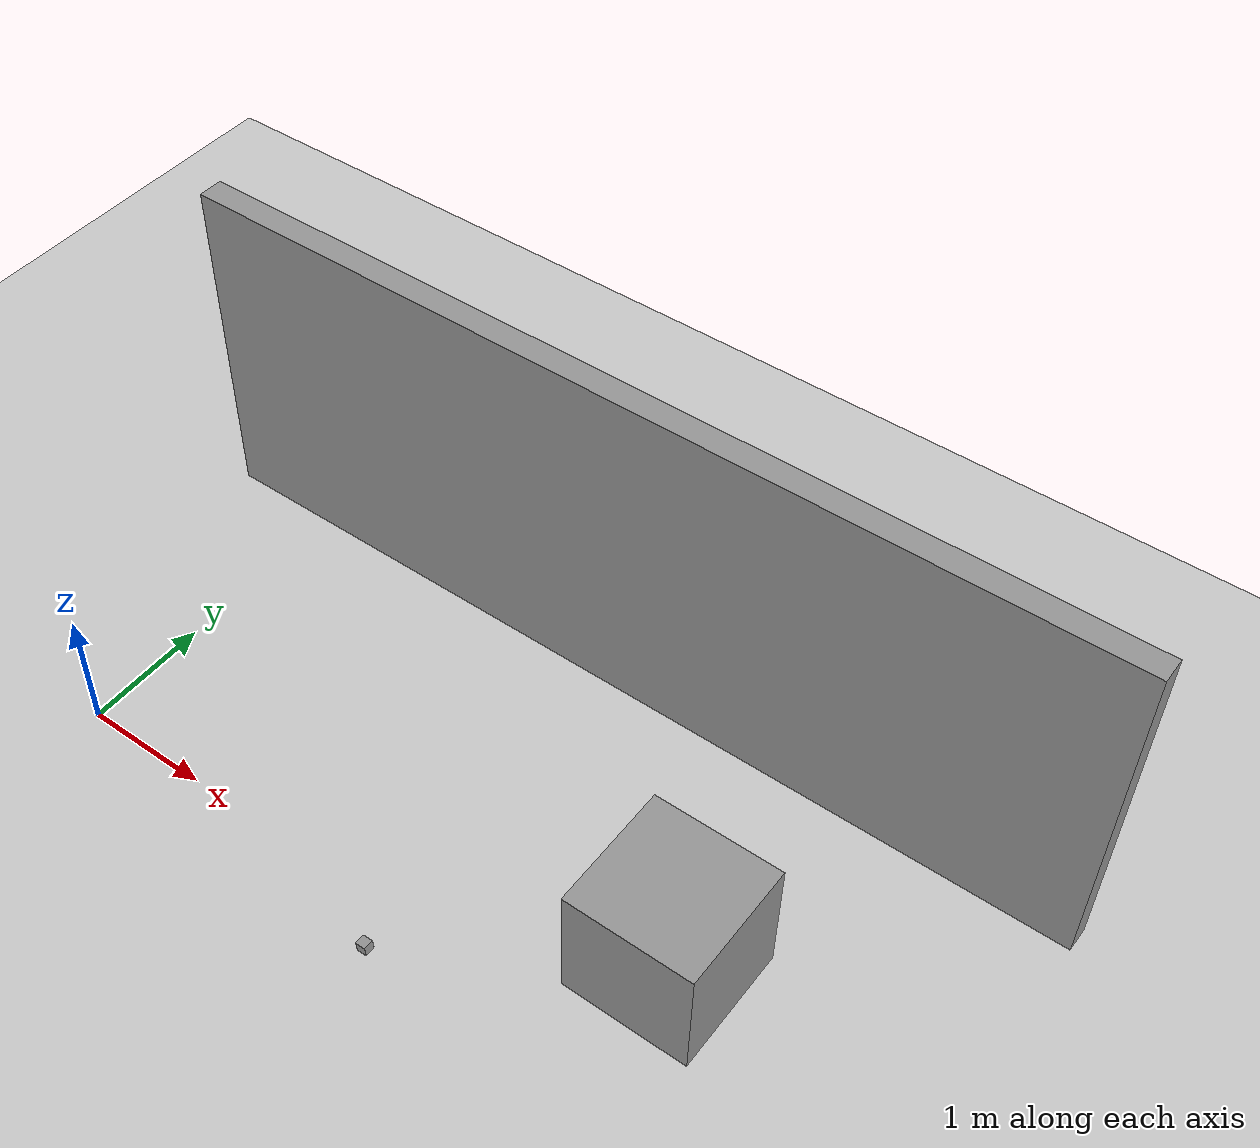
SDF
<sdf version="1.6">
 <world name="default">
  <model name="ground_plane">
   <static>1</static>
   <link name="link">
    <collision name="collision">
     <geometry><plane><normal>0 0 1</normal><size>100 100</size></plane></geometry>
     <surface><friction><ode><mu>100</mu><mu2>50</mu2></ode></friction></surface>
    </collision>
    <visual name="visual">
     <cast_shadows>0</cast_shadows>
     <geometry><plane><normal>0 0 1</normal><size>100 100</size></plane></geometry>
     <material>
      <script><uri>file://media/materials/scripts/gazebo.material</uri><name>Gazebo/Grey</name></script>
     </material>
    </visual>
   </link>
  </model>
  <model name="unit_box_0_6">
   <pose>4.58017 0.759356 0.499995 -1e-05 -0 0.00013</pose>
   <link name="link">
    <inertial>
     <mass>1</mass>
     <inertia>
      <ixx>0.166667</ixx>
      <ixy>0</ixy>
      <ixz>0</ixz>
      <iyy>0.166667</iyy>
      <iyz>0</iyz>
      <izz>0.166667</izz>
     </inertia>
    </inertial>
    <collision name="collision"><geometry><box><size>1 1 1</size></box></geometry></collision>
    <visual name="visual">
     <geometry><box><size>1 1 1</size></box></geometry>
     <material>
      <script><name>Gazebo/Grey</name><uri>file://media/materials/scripts/gazebo.material</uri></script>
     </material>
    </visual>
   </link>
  </model>
  <model name="grey_wall_2">
   <static>1</static>
   <link name="link">
    <pose>0 0 1.4 0 -0 0</pose>
    <collision name="collision"><geometry><box><size>7.5 0.2 2.8</size></box></geometry></collision>
    <visual name="visual">
     <cast_shadows>0</cast_shadows>
     <geometry><box><size>7.5 0.2 2.8</size></box></geometry>
     <material>
      <script>
       <uri>model://grey_wall/materials/scripts</uri>
       <uri>model://grey_wall/materials/textures</uri>
       <name>vrc/grey_wall</name>
      </script>
     </material>
    </visual>
   </link>
   <pose>2.87826 2.60687 0 0 -0 0</pose>
  </model>
  <model name="test3">
   <link name="link_0">
    <pose>-0 0.05004 0 0 -0 0</pose>
    <inertial>
     <mass>1</mass>
     <inertia><ixx>0.145833</ixx><ixy>0</ixy><ixz>0</ixz><iyy>0.145833</iyy><iyz>0</iyz><izz>0.125</izz></inertia>
    </inertial>
    <visual name="visual">
     <pose>0 0 0 1.57 -0 0</pose>
     <geometry><cylinder><radius>0.0001</radius><length>0.0001</length></cylinder></geometry>
     <material>
      <lighting>1</lighting>
      <script><uri>file://media/materials/scripts/gazebo.material</uri><name>Gazebo/Grey</name></script>
      <ambient>0.3 0.3 0.3 1</ambient>
      <diffuse>0.7 0.7 0.7 1</diffuse>
      <specular>0.01 0.01 0.01 1</specular>
      <emissive>0 0 0 1</emissive>
      <shader type="vertex"><normal_map>__default__</normal_map></shader>
     </material>
    </visual>
    <collision name="collision">
     <pose>0 0 0 1.57 -0 0</pose>
     <geometry><cylinder><radius>0.05</radius><length>0.02</length></cylinder></geometry>
     <surface>
      <friction>
       <ode><mu>1</mu><mu2>1</mu2><fdir1>0 0 0</fdir1><slip1>0</slip1><slip2>0</slip2></ode>
       <torsional>
        <coefficient>1</coefficient>
        <patch_radius>0</patch_radius>
        <surface_radius>0</surface_radius>
        <use_patch_radius>1</use_patch_radius>
        <ode><slip>0</slip></ode>
       </torsional>
      </friction>
      <bounce><restitution_coefficient>0</restitution_coefficient><threshold>1e+06</threshold></bounce>
      <contact>
       <collide_without_contact>0</collide_without_contact>
       <collide_without_contact_bitmask>1</collide_without_contact_bitmask>
       <collide_bitmask>1</collide_bitmask>
       <ode>
        <soft_cfm>0</soft_cfm>
        <soft_erp>0.2</soft_erp>
        <kp>1e+13</kp>
        <kd>1</kd>
        <max_vel>0.01</max_vel>
        <min_depth>0</min_depth>
       </ode>
       <bullet>
        <split_impulse>1</split_impulse>
        <split_impulse_penetration_threshold>-0.01</split_impulse_penetration_threshold>
        <soft_cfm>0</soft_cfm>
        <soft_erp>0.2</soft_erp>
        <kp>1e+13</kp>
        <kd>1</kd>
       </bullet>
      </contact>
     </surface>
    </collision>
   </link>
   <link name="link_0_clone">
    <pose>-0 -0.05004 0 0 -0 0</pose>
    <inertial>
     <mass>1</mass>
     <inertia><ixx>0.145833</ixx><ixy>0</ixy><ixz>0</ixz><iyy>0.145833</iyy><iyz>0</iyz><izz>0.125</izz></inertia>
    </inertial>
    <visual name="visual">
     <pose>0 0 0 1.57 -0 0</pose>
     <geometry><cylinder><radius>0.0001</radius><length>0.0001</length></cylinder></geometry>
     <material>
      <lighting>1</lighting>
      <script><uri>file://media/materials/scripts/gazebo.material</uri><name>Gazebo/Grey</name></script>
      <ambient>0.3 0.3 0.3 1</ambient>
      <diffuse>0.7 0.7 0.7 1</diffuse>
      <specular>0.01 0.01 0.01 1</specular>
      <emissive>0 0 0 1</emissive>
      <shader type="vertex"><normal_map>__default__</normal_map></shader>
     </material>
    </visual>
    <collision name="collision">
     <pose>0 0 0 1.57 -0 0</pose>
     <geometry><cylinder><radius>0.05</radius><length>0.02</length></cylinder></geometry>
     <surface>
      <friction>
       <ode><mu>1</mu><mu2>1</mu2><fdir1>0 0 0</fdir1><slip1>0</slip1><slip2>0</slip2></ode>
       <torsional>
        <coefficient>1</coefficient>
        <patch_radius>0</patch_radius>
        <surface_radius>0</surface_radius>
        <use_patch_radius>1</use_patch_radius>
        <ode><slip>0</slip></ode>
       </torsional>
      </friction>
      <bounce><restitution_coefficient>0</restitution_coefficient><threshold>1e+06</threshold></bounce>
      <contact>
       <collide_without_contact>0</collide_without_contact>
       <collide_without_contact_bitmask>1</collide_without_contact_bitmask>
       <collide_bitmask>1</collide_bitmask>
       <ode>
        <soft_cfm>0</soft_cfm>
        <soft_erp>0.2</soft_erp>
        <kp>1e+13</kp>
        <kd>1</kd>
        <max_vel>0.01</max_vel>
        <min_depth>0</min_depth>
       </ode>
       <bullet>
        <split_impulse>1</split_impulse>
        <split_impulse_penetration_threshold>-0.01</split_impulse_penetration_threshold>
        <soft_cfm>0</soft_cfm>
        <soft_erp>0.2</soft_erp>
        <kp>1e+13</kp>
        <kd>1</kd>
       </bullet>
      </contact>
     </surface>
    </collision>
   </link>
   <link name="link_1">
    <inertial>
     <mass>1</mass>
     <inertia>
      <ixx>0.166667</ixx>
      <ixy>0</ixy>
      <ixz>0</ixz>
      <iyy>0.166667</iyy>
      <iyz>0</iyz>
      <izz>0.166667</izz>
     </inertia>
    </inertial>
    <visual name="visual">
     <geometry><box><size>0.08 0.08 0.08</size></box></geometry>
     <material>
      <lighting>1</lighting>
      <script><uri>file://media/materials/scripts/gazebo.material</uri><name>Gazebo/Grey</name></script>
      <ambient>0.3 0.3 0.3 1</ambient>
      <diffuse>0.7 0.7 0.7 1</diffuse>
      <specular>0.01 0.01 0.01 1</specular>
      <emissive>0 0 0 1</emissive>
      <shader type="vertex"><normal_map>__default__</normal_map></shader>
     </material>
    </visual>
    <collision name="collision">
     <geometry><box><size>0.08 0.08 0.08</size></box></geometry>
     <surface>
      <friction>
       <ode><mu>1</mu><mu2>1</mu2><fdir1>0 0 0</fdir1><slip1>0</slip1><slip2>0</slip2></ode>
       <torsional>
        <coefficient>1</coefficient>
        <patch_radius>0</patch_radius>
        <surface_radius>0</surface_radius>
        <use_patch_radius>1</use_patch_radius>
        <ode><slip>0</slip></ode>
       </torsional>
      </friction>
      <bounce><restitution_coefficient>0</restitution_coefficient><threshold>1e+06</threshold></bounce>
      <contact>
       <collide_without_contact>0</collide_without_contact>
       <collide_without_contact_bitmask>1</collide_without_contact_bitmask>
       <collide_bitmask>1</collide_bitmask>
       <ode>
        <soft_cfm>0</soft_cfm>
        <soft_erp>0.2</soft_erp>
        <kp>1e+13</kp>
        <kd>1</kd>
        <max_vel>0.01</max_vel>
        <min_depth>0</min_depth>
       </ode>
       <bullet>
        <split_impulse>1</split_impulse>
        <split_impulse_penetration_threshold>-0.01</split_impulse_penetration_threshold>
        <soft_cfm>0</soft_cfm>
        <soft_erp>0.2</soft_erp>
        <kp>1e+13</kp>
        <kd>1</kd>
       </bullet>
      </contact>
     </surface>
    </collision>
   </link>
   <joint name="link_1_JOINT_0" type="revolute">
    <parent>link_1</parent>
    <child>link_0_clone</child>
    <axis>
     <xyz>0 1 0</xyz>
     <use_parent_model_frame>0</use_parent_model_frame>
     <limit>
      <lower>-1.79769e+308</lower>
      <upper>1.79769e+308</upper>
      <effort>-1</effort>
      <velocity>-1</velocity>
     </limit>
     <dynamics>
      <spring_reference>0</spring_reference>
      <spring_stiffness>0</spring_stiffness>
      <damping>0</damping>
     </dynamics>
    </axis>
    <physics>
     <ode><limit><cfm>0</cfm><erp>0.2</erp></limit><suspension><cfm>0</cfm><erp>0.2</erp></suspension></ode>
    </physics>
   </joint>
   <joint name="link_1_JOINT_1" type="revolute">
    <parent>link_1</parent>
    <child>link_0</child>
    <axis>
     <xyz>0 1 0</xyz>
     <use_parent_model_frame>0</use_parent_model_frame>
     <limit>
      <lower>-1.79769e+308</lower>
      <upper>1.79769e+308</upper>
      <effort>-1</effort>
      <velocity>-1</velocity>
     </limit>
     <dynamics>
      <spring_reference>0</spring_reference>
      <spring_stiffness>0</spring_stiffness>
      <damping>0</damping>
     </dynamics>
    </axis>
    <physics>
     <ode><limit><cfm>0</cfm><erp>0.2</erp></limit><suspension><cfm>0</cfm><erp>0.2</erp></suspension></ode>
    </physics>
   </joint>
   <static>0</static>
   <pose>2.88131 -0.322967 0.050007 1.1e-05 -0.065911 -0.003432</pose>
  </model>
 </world>
</sdf>
